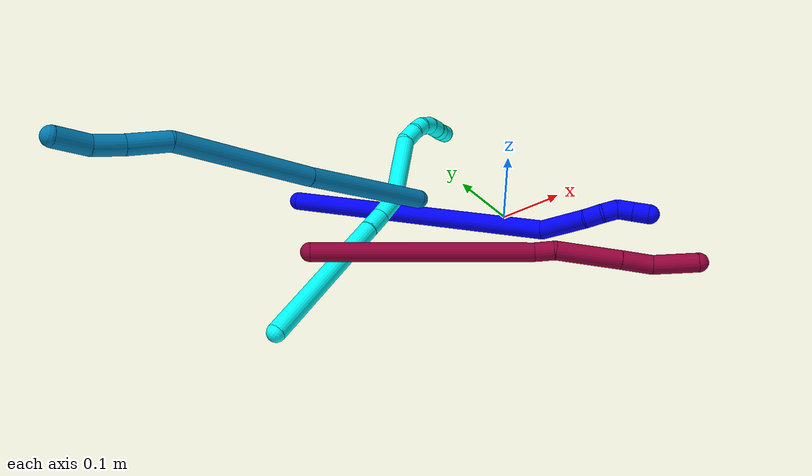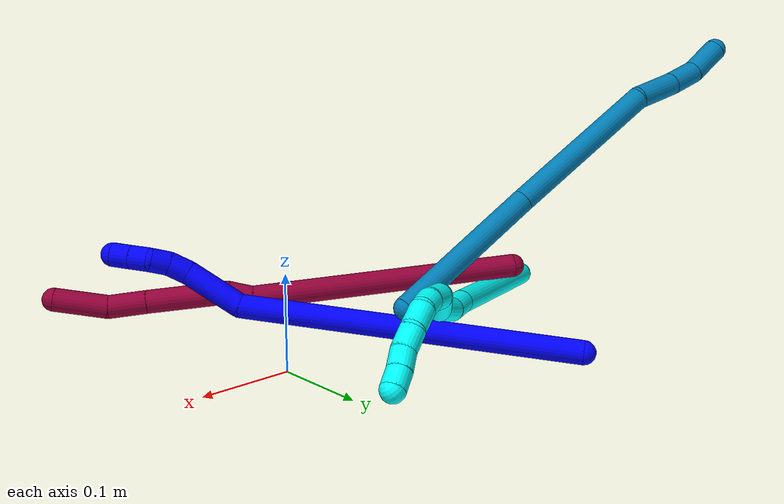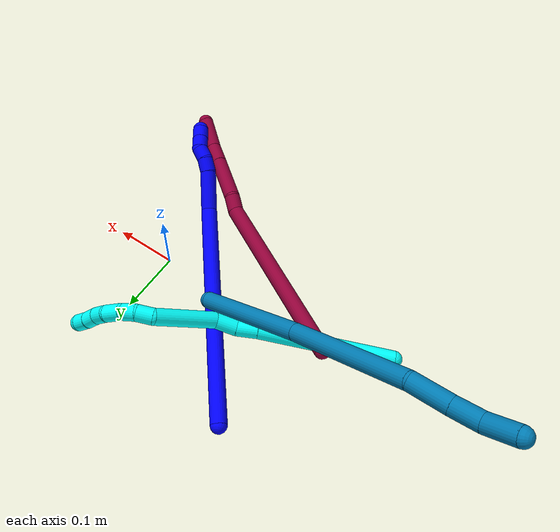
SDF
<sdf version="1.7">
 <world name="default">
  <model name="photoneo_s_sensor">
   <static>1</static>
   <pose>0 0 2 1.57079 1.57079 3.14159</pose>
   <link name="link">
    <inertial><mass>0.1</mass></inertial>
    <sensor name="sensor" type="depth">
     <update_rate>30</update_rate>
     <camera>
      <horizontal_fov>1.22</horizontal_fov>
      <image><width>1920</width><height>1200</height><format>B8G8R8</format></image>
      <clip><near>0.1</near><far>4</far></clip>
      <depth_camera><output>points</output></depth_camera>
     </camera>
     <plugin name="camera_plugin" filename="libgazebo_ros_depth_camera.so">
      <baseline>0.2</baseline>
      <alwaysOn>1</alwaysOn>
      <updateRate>0.0</updateRate>
      <cameraName>camera_ir</cameraName>
      <imageTopicName>/camera/color/image_raw</imageTopicName>
      <cameraInfoTopicName>/camera/color/camera_info</cameraInfoTopicName>
      <depthImageTopicName>/camera/depth/image_raw</depthImageTopicName>
      <depthImageCameraInfoTopicName>/camera/depth/camera_info</depthImageCameraInfoTopicName>
      <pointCloudTopicName>/camera/depth/points</pointCloudTopicName>
      <frameName>fr_optical</frameName>
      <pointCloudCutoff>0.1</pointCloudCutoff>
      <pointCloudCutoffMax>2.0</pointCloudCutoffMax>
      <distortionK1>0</distortionK1>
      <distortionK2>0</distortionK2>
      <distortionK3>0</distortionK3>
      <distortionT1>0</distortionT1>
      <distortionT2>0</distortionT2>
      <CxPrime>0</CxPrime>
      <Cx>0</Cx>
      <Cy>0</Cy>
      <focalLength>0</focalLength>
      <hackBaseline>0</hackBaseline>
     </plugin>
    </sensor>
   </link>
  </model>
  <model name="1">
   <static>0</static>
   <link name="1">
    <collision name="collision-cylinder-e_1_1_4">
     <pose>0.014824 -0.054235 -0.16768 2.82877 0.083921 0.520397</pose>
     <geometry><cylinder><radius>0.0125</radius><length>0.35371</length></cylinder></geometry>
     <surface>
      <friction><ode><mu>1.16</mu><mu2>1.16</mu2><slip1>0</slip1><slip2>0</slip2></ode></friction>
      <contact><ode><kp>1e+06</kp><kd>1</kd><max_vel>0</max_vel><min_depth>0.001</min_depth></ode></contact>
     </surface>
    </collision>
    <visual name="visual-cylinder-e_1_1_4">
     <pose>0.014824 -0.054235 -0.16768 2.82877 0.083921 0.520397</pose>
     <geometry><cylinder><radius>0.0125</radius><length>0.35371</length></cylinder></geometry>
     <material><ambient>0 0 1 1</ambient></material>
    </visual>
    <collision name="collision-cylinder-e_2_4_5">
     <pose>0.024348 -0.128435 -0.359529 2.45118 -0.167512 -0.458699</pose>
     <geometry><cylinder><radius>0.0125</radius><length>0.063588</length></cylinder></geometry>
     <surface>
      <friction><ode><mu>1.16</mu><mu2>1.16</mu2><slip1>0</slip1><slip2>0</slip2></ode></friction>
      <contact><ode><kp>1e+06</kp><kd>1</kd><max_vel>0</max_vel><min_depth>0.001</min_depth></ode></contact>
     </surface>
    </collision>
    <visual name="visual-cylinder-e_2_4_5">
     <pose>0.024348 -0.128435 -0.359529 2.45118 -0.167512 -0.458699</pose>
     <geometry><cylinder><radius>0.0125</radius><length>0.063588</length></cylinder></geometry>
     <material><ambient>0 0 1 1</ambient></material>
    </visual>
    <collision name="collision-cylinder-e_3_5_6">
     <pose>0.019508 -0.1559 -0.391935 2.40295 0.041344 0.106722</pose>
     <geometry><cylinder><radius>0.0125</radius><length>0.022299</length></cylinder></geometry>
     <surface>
      <friction><ode><mu>1.16</mu><mu2>1.16</mu2><slip1>0</slip1><slip2>0</slip2></ode></friction>
      <contact><ode><kp>1e+06</kp><kd>1</kd><max_vel>0</max_vel><min_depth>0.001</min_depth></ode></contact>
     </surface>
    </collision>
    <visual name="visual-cylinder-e_3_5_6">
     <pose>0.019508 -0.1559 -0.391935 2.40295 0.041344 0.106722</pose>
     <geometry><cylinder><radius>0.0125</radius><length>0.022299</length></cylinder></geometry>
     <material><ambient>0 0 1 1</ambient></material>
    </visual>
    <collision name="collision-cylinder-e_4_6_7">
     <pose>0.023092 -0.16948 -0.407487 2.44817 0.317312 0.833768</pose>
     <geometry><cylinder><radius>0.0125</radius><length>0.020023</length></cylinder></geometry>
     <surface>
      <friction><ode><mu>1.16</mu><mu2>1.16</mu2><slip1>0</slip1><slip2>0</slip2></ode></friction>
      <contact><ode><kp>1e+06</kp><kd>1</kd><max_vel>0</max_vel><min_depth>0.001</min_depth></ode></contact>
     </surface>
    </collision>
    <visual name="visual-cylinder-e_4_6_7">
     <pose>0.023092 -0.16948 -0.407487 2.44817 0.317312 0.833768</pose>
     <geometry><cylinder><radius>0.0125</radius><length>0.020023</length></cylinder></geometry>
     <material><ambient>0 0 1 1</ambient></material>
    </visual>
    <collision name="collision-cylinder-e_5_7_8">
     <pose>0.026525 -0.178197 -0.424584 2.87825 0.030437 0.228836</pose>
     <geometry><cylinder><radius>0.0125</radius><length>0.020272</length></cylinder></geometry>
     <surface>
      <friction><ode><mu>1.16</mu><mu2>1.16</mu2><slip1>0</slip1><slip2>0</slip2></ode></friction>
      <contact><ode><kp>1e+06</kp><kd>1</kd><max_vel>0</max_vel><min_depth>0.001</min_depth></ode></contact>
     </surface>
    </collision>
    <visual name="visual-cylinder-e_5_7_8">
     <pose>0.026525 -0.178197 -0.424584 2.87825 0.030437 0.228836</pose>
     <geometry><cylinder><radius>0.0125</radius><length>0.020272</length></cylinder></geometry>
     <material><ambient>0 0 1 1</ambient></material>
    </visual>
    <collision name="collision-cylinder-e_6_8_2">
     <pose>0.027129 -0.18355 -0.444042 2.86794 0.029484 0.21334</pose>
     <geometry><cylinder><radius>0.0125</radius><length>0.020108</length></cylinder></geometry>
     <surface>
      <friction><ode><mu>1.16</mu><mu2>1.16</mu2><slip1>0</slip1><slip2>0</slip2></ode></friction>
      <contact><ode><kp>1e+06</kp><kd>1</kd><max_vel>0</max_vel><min_depth>0.001</min_depth></ode></contact>
     </surface>
    </collision>
    <visual name="visual-cylinder-e_6_8_2">
     <pose>0.027129 -0.18355 -0.444042 2.86794 0.029484 0.21334</pose>
     <geometry><cylinder><radius>0.0125</radius><length>0.020108</length></cylinder></geometry>
     <material><ambient>0 0 1 1</ambient></material>
    </visual>
    <collision name="collision-sphere-2">
     <pose>0.027426 -0.186266 -0.453717 0 -0 0</pose>
     <geometry><sphere><radius>0.0125</radius></sphere></geometry>
     <surface>
      <friction><ode><mu>1.16</mu><mu2>1.16</mu2><slip1>0</slip1><slip2>0</slip2></ode></friction>
      <contact><ode><kp>1e+06</kp><kd>1</kd><max_vel>0</max_vel><min_depth>0.001</min_depth></ode></contact>
     </surface>
    </collision>
    <visual name="visual-sphere-2">
     <pose>0.027426 -0.186266 -0.453717 0 -0 0</pose>
     <geometry><sphere><radius>0.0125</radius></sphere></geometry>
     <material><ambient>0 0 1 1</ambient></material>
    </visual>
    <collision name="collision-sphere-4">
     <pose>0.029649 -0.10847 -0.335359 0 -0 0</pose>
     <geometry><sphere><radius>0.0125</radius></sphere></geometry>
     <surface>
      <friction><ode><mu>1.16</mu><mu2>1.16</mu2><slip1>0</slip1><slip2>0</slip2></ode></friction>
      <contact><ode><kp>1e+06</kp><kd>1</kd><max_vel>0</max_vel><min_depth>0.001</min_depth></ode></contact>
     </surface>
    </collision>
    <visual name="visual-sphere-4">
     <pose>0.029649 -0.10847 -0.335359 0 -0 0</pose>
     <geometry><sphere><radius>0.0125</radius></sphere></geometry>
     <material><ambient>0 0 1 1</ambient></material>
    </visual>
    <collision name="collision-sphere-1">
     <geometry><sphere><radius>0.0125</radius></sphere></geometry>
     <surface>
      <friction><ode><mu>1.16</mu><mu2>1.16</mu2><slip1>0</slip1><slip2>0</slip2></ode></friction>
      <contact><ode><kp>1e+06</kp><kd>1</kd><max_vel>0</max_vel><min_depth>0.001</min_depth></ode></contact>
     </surface>
    </collision>
    <visual name="visual-sphere-1">
     <geometry><sphere><radius>0.0125</radius></sphere></geometry>
     <material><ambient>0 0 1 1</ambient></material>
    </visual>
    <collision name="collision-sphere-8">
     <pose>0.026833 -0.180835 -0.434367 0 -0 0</pose>
     <geometry><sphere><radius>0.0125</radius></sphere></geometry>
     <surface>
      <friction><ode><mu>1.16</mu><mu2>1.16</mu2><slip1>0</slip1><slip2>0</slip2></ode></friction>
      <contact><ode><kp>1e+06</kp><kd>1</kd><max_vel>0</max_vel><min_depth>0.001</min_depth></ode></contact>
     </surface>
    </collision>
    <visual name="visual-sphere-8">
     <pose>0.026833 -0.180835 -0.434367 0 -0 0</pose>
     <geometry><sphere><radius>0.0125</radius></sphere></geometry>
     <material><ambient>0 0 1 1</ambient></material>
    </visual>
    <collision name="collision-sphere-5">
     <pose>0.019047 -0.1484 -0.383699 0 -0 0</pose>
     <geometry><sphere><radius>0.0125</radius></sphere></geometry>
     <surface>
      <friction><ode><mu>1.16</mu><mu2>1.16</mu2><slip1>0</slip1><slip2>0</slip2></ode></friction>
      <contact><ode><kp>1e+06</kp><kd>1</kd><max_vel>0</max_vel><min_depth>0.001</min_depth></ode></contact>
     </surface>
    </collision>
    <visual name="visual-sphere-5">
     <pose>0.019047 -0.1484 -0.383699 0 -0 0</pose>
     <geometry><sphere><radius>0.0125</radius></sphere></geometry>
     <material><ambient>0 0 1 1</ambient></material>
    </visual>
    <collision name="collision-sphere-6">
     <pose>0.019969 -0.1634 -0.400172 0 -0 0</pose>
     <geometry><sphere><radius>0.0125</radius></sphere></geometry>
     <surface>
      <friction><ode><mu>1.16</mu><mu2>1.16</mu2><slip1>0</slip1><slip2>0</slip2></ode></friction>
      <contact><ode><kp>1e+06</kp><kd>1</kd><max_vel>0</max_vel><min_depth>0.001</min_depth></ode></contact>
     </surface>
    </collision>
    <visual name="visual-sphere-6">
     <pose>0.019969 -0.1634 -0.400172 0 -0 0</pose>
     <geometry><sphere><radius>0.0125</radius></sphere></geometry>
     <material><ambient>0 0 1 1</ambient></material>
    </visual>
    <collision name="collision-sphere-7">
     <pose>0.026216 -0.17556 -0.414802 0 -0 0</pose>
     <geometry><sphere><radius>0.0125</radius></sphere></geometry>
     <surface>
      <friction><ode><mu>1.16</mu><mu2>1.16</mu2><slip1>0</slip1><slip2>0</slip2></ode></friction>
      <contact><ode><kp>1e+06</kp><kd>1</kd><max_vel>0</max_vel><min_depth>0.001</min_depth></ode></contact>
     </surface>
    </collision>
    <visual name="visual-sphere-7">
     <pose>0.026216 -0.17556 -0.414802 0 -0 0</pose>
     <geometry><sphere><radius>0.0125</radius></sphere></geometry>
     <material><ambient>0 0 1 1</ambient></material>
    </visual>
    <inertial>
     <pose>0.017545 -0.083047 -0.233213 0 -0 0</pose>
     <mass>0.5</mass>
     <inertia>
      <ixx>0.005055</ixx>
      <ixy>0</ixy>
      <ixz>0</ixz>
      <iyy>-0.001217</iyy>
      <iyz>0</iyz>
      <izz>0.000811</izz>
     </inertia>
    </inertial>
   </link>
   <pose>-0.233049 0.180496 0.011496 -1.40434 0.505091 0.532991</pose>
  </model>
  <model name="3">
   <static>0</static>
   <link name="3">
    <collision name="collision-cylinder-e_1_1_4">
     <pose>0.00408 0.090204 -0.047245 -2.05327 0.04005 -0.066172</pose>
     <geometry><cylinder><radius>0.0125</radius><length>0.203819</length></cylinder></geometry>
     <surface>
      <friction><ode><mu>1.16</mu><mu2>1.16</mu2><slip1>0</slip1><slip2>0</slip2></ode></friction>
      <contact><ode><kp>1e+06</kp><kd>1</kd><max_vel>0</max_vel><min_depth>0.001</min_depth></ode></contact>
     </surface>
    </collision>
    <visual name="visual-cylinder-e_1_1_4">
     <pose>0.00408 0.090204 -0.047245 -2.05327 0.04005 -0.066172</pose>
     <geometry><cylinder><radius>0.0125</radius><length>0.203819</length></cylinder></geometry>
     <material><ambient>0.003922 1 0.996078 1</ambient></material>
    </visual>
    <collision name="collision-cylinder-e_2_4_5">
     <pose>0.008911 0.195031 -0.100556 -1.96407 0.047352 -0.070895</pose>
     <geometry><cylinder><radius>0.0125</radius><length>0.031698</length></cylinder></geometry>
     <surface>
      <friction><ode><mu>1.16</mu><mu2>1.16</mu2><slip1>0</slip1><slip2>0</slip2></ode></friction>
      <contact><ode><kp>1e+06</kp><kd>1</kd><max_vel>0</max_vel><min_depth>0.001</min_depth></ode></contact>
     </surface>
    </collision>
    <visual name="visual-cylinder-e_2_4_5">
     <pose>0.008911 0.195031 -0.100556 -1.96407 0.047352 -0.070895</pose>
     <geometry><cylinder><radius>0.0125</radius><length>0.031698</length></cylinder></geometry>
     <material><ambient>0.003922 1 0.996078 1</ambient></material>
    </visual>
    <collision name="collision-cylinder-e_3_5_6">
     <pose>0.01068 0.222572 -0.116667 -2.23167 0.062196 -0.127011</pose>
     <geometry><cylinder><radius>0.0125</radius><length>0.032791</length></cylinder></geometry>
     <surface>
      <friction><ode><mu>1.16</mu><mu2>1.16</mu2><slip1>0</slip1><slip2>0</slip2></ode></friction>
      <contact><ode><kp>1e+06</kp><kd>1</kd><max_vel>0</max_vel><min_depth>0.001</min_depth></ode></contact>
     </surface>
    </collision>
    <visual name="visual-cylinder-e_3_5_6">
     <pose>0.01068 0.222572 -0.116667 -2.23167 0.062196 -0.127011</pose>
     <geometry><cylinder><radius>0.0125</radius><length>0.032791</length></cylinder></geometry>
     <material><ambient>0.003922 1 0.996078 1</ambient></material>
    </visual>
    <collision name="collision-cylinder-e_4_6_7">
     <pose>0.034624 0.269358 -0.15152 -2.20301 0.499811 -0.932666</pose>
     <geometry><cylinder><radius>0.0125</radius><length>0.095667</length></cylinder></geometry>
     <surface>
      <friction><ode><mu>1.16</mu><mu2>1.16</mu2><slip1>0</slip1><slip2>0</slip2></ode></friction>
      <contact><ode><kp>1e+06</kp><kd>1</kd><max_vel>0</max_vel><min_depth>0.001</min_depth></ode></contact>
     </surface>
    </collision>
    <visual name="visual-cylinder-e_4_6_7">
     <pose>0.034624 0.269358 -0.15152 -2.20301 0.499811 -0.932666</pose>
     <geometry><cylinder><radius>0.0125</radius><length>0.095667</length></cylinder></geometry>
     <material><ambient>0.003922 1 0.996078 1</ambient></material>
    </visual>
    <collision name="collision-cylinder-e_5_7_8">
     <pose>0.058036 0.314119 -0.18237 -2.07717 0.039111 -0.066399</pose>
     <geometry><cylinder><radius>0.0125</radius><length>0.024933</length></cylinder></geometry>
     <surface>
      <friction><ode><mu>1.16</mu><mu2>1.16</mu2><slip1>0</slip1><slip2>0</slip2></ode></friction>
      <contact><ode><kp>1e+06</kp><kd>1</kd><max_vel>0</max_vel><min_depth>0.001</min_depth></ode></contact>
     </surface>
    </collision>
    <visual name="visual-cylinder-e_5_7_8">
     <pose>0.058036 0.314119 -0.18237 -2.07717 0.039111 -0.066399</pose>
     <geometry><cylinder><radius>0.0125</radius><length>0.024933</length></cylinder></geometry>
     <material><ambient>0.003922 1 0.996078 1</ambient></material>
    </visual>
    <collision name="collision-cylinder-e_6_8_9">
     <pose>0.05819 0.335218 -0.191079 -1.82644 -0.031605 0.040925</pose>
     <geometry><cylinder><radius>0.0125</radius><length>0.021106</length></cylinder></geometry>
     <surface>
      <friction><ode><mu>1.16</mu><mu2>1.16</mu2><slip1>0</slip1><slip2>0</slip2></ode></friction>
      <contact><ode><kp>1e+06</kp><kd>1</kd><max_vel>0</max_vel><min_depth>0.001</min_depth></ode></contact>
     </surface>
    </collision>
    <visual name="visual-cylinder-e_6_8_9">
     <pose>0.05819 0.335218 -0.191079 -1.82644 -0.031605 0.040925</pose>
     <geometry><cylinder><radius>0.0125</radius><length>0.021106</length></cylinder></geometry>
     <material><ambient>0.003922 1 0.996078 1</ambient></material>
    </visual>
    <collision name="collision-cylinder-e_7_9_10">
     <pose>0.055041 0.35841 -0.193282 -1.53502 -0.213325 0.205881</pose>
     <geometry><cylinder><radius>0.0125</radius><length>0.026594</length></cylinder></geometry>
     <surface>
      <friction><ode><mu>1.16</mu><mu2>1.16</mu2><slip1>0</slip1><slip2>0</slip2></ode></friction>
      <contact><ode><kp>1e+06</kp><kd>1</kd><max_vel>0</max_vel><min_depth>0.001</min_depth></ode></contact>
     </surface>
    </collision>
    <visual name="visual-cylinder-e_7_9_10">
     <pose>0.055041 0.35841 -0.193282 -1.53502 -0.213325 0.205881</pose>
     <geometry><cylinder><radius>0.0125</radius><length>0.026594</length></cylinder></geometry>
     <material><ambient>0.003922 1 0.996078 1</ambient></material>
    </visual>
    <collision name="collision-cylinder-e_8_10_11">
     <pose>0.047536 0.381581 -0.190262 -1.32496 -0.420095 0.329601</pose>
     <geometry><cylinder><radius>0.0125</radius><length>0.022998</length></cylinder></geometry>
     <surface>
      <friction><ode><mu>1.16</mu><mu2>1.16</mu2><slip1>0</slip1><slip2>0</slip2></ode></friction>
      <contact><ode><kp>1e+06</kp><kd>1</kd><max_vel>0</max_vel><min_depth>0.001</min_depth></ode></contact>
     </surface>
    </collision>
    <visual name="visual-cylinder-e_8_10_11">
     <pose>0.047536 0.381581 -0.190262 -1.32496 -0.420095 0.329601</pose>
     <geometry><cylinder><radius>0.0125</radius><length>0.022998</length></cylinder></geometry>
     <material><ambient>0.003922 1 0.996078 1</ambient></material>
    </visual>
    <collision name="collision-cylinder-e_9_11_12">
     <pose>0.040716 0.401118 -0.184562 -1.24642 -0.212684 0.15315</pose>
     <geometry><cylinder><radius>0.0125</radius><length>0.02019</length></cylinder></geometry>
     <surface>
      <friction><ode><mu>1.16</mu><mu2>1.16</mu2><slip1>0</slip1><slip2>0</slip2></ode></friction>
      <contact><ode><kp>1e+06</kp><kd>1</kd><max_vel>0</max_vel><min_depth>0.001</min_depth></ode></contact>
     </surface>
    </collision>
    <visual name="visual-cylinder-e_9_11_12">
     <pose>0.040716 0.401118 -0.184562 -1.24642 -0.212684 0.15315</pose>
     <geometry><cylinder><radius>0.0125</radius><length>0.02019</length></cylinder></geometry>
     <material><ambient>0.003922 1 0.996078 1</ambient></material>
    </visual>
    <collision name="collision-cylinder-e_10_12_2">
     <pose>0.035695 0.4199 -0.179226 -1.34248 -0.290141 0.23105</pose>
     <geometry><cylinder><radius>0.0125</radius><length>0.020205</length></cylinder></geometry>
     <surface>
      <friction><ode><mu>1.16</mu><mu2>1.16</mu2><slip1>0</slip1><slip2>0</slip2></ode></friction>
      <contact><ode><kp>1e+06</kp><kd>1</kd><max_vel>0</max_vel><min_depth>0.001</min_depth></ode></contact>
     </surface>
    </collision>
    <visual name="visual-cylinder-e_10_12_2">
     <pose>0.035695 0.4199 -0.179226 -1.34248 -0.290141 0.23105</pose>
     <geometry><cylinder><radius>0.0125</radius><length>0.020205</length></cylinder></geometry>
     <material><ambient>0.003922 1 0.996078 1</ambient></material>
    </visual>
    <collision name="collision-sphere-2">
     <pose>0.032804 0.429329 -0.177035 0 -0 0</pose>
     <geometry><sphere><radius>0.0125</radius></sphere></geometry>
     <surface>
      <friction><ode><mu>1.16</mu><mu2>1.16</mu2><slip1>0</slip1><slip2>0</slip2></ode></friction>
      <contact><ode><kp>1e+06</kp><kd>1</kd><max_vel>0</max_vel><min_depth>0.001</min_depth></ode></contact>
     </surface>
    </collision>
    <visual name="visual-sphere-2">
     <pose>0.032804 0.429329 -0.177035 0 -0 0</pose>
     <geometry><sphere><radius>0.0125</radius></sphere></geometry>
     <material><ambient>0.003922 1 0.996078 1</ambient></material>
    </visual>
    <collision name="collision-sphere-12">
     <pose>0.038585 0.410471 -0.181417 0 -0 0</pose>
     <geometry><sphere><radius>0.0125</radius></sphere></geometry>
     <surface>
      <friction><ode><mu>1.16</mu><mu2>1.16</mu2><slip1>0</slip1><slip2>0</slip2></ode></friction>
      <contact><ode><kp>1e+06</kp><kd>1</kd><max_vel>0</max_vel><min_depth>0.001</min_depth></ode></contact>
     </surface>
    </collision>
    <visual name="visual-sphere-12">
     <pose>0.038585 0.410471 -0.181417 0 -0 0</pose>
     <geometry><sphere><radius>0.0125</radius></sphere></geometry>
     <material><ambient>0.003922 1 0.996078 1</ambient></material>
    </visual>
    <collision name="collision-sphere-11">
     <pose>0.042847 0.391765 -0.187707 0 -0 0</pose>
     <geometry><sphere><radius>0.0125</radius></sphere></geometry>
     <surface>
      <friction><ode><mu>1.16</mu><mu2>1.16</mu2><slip1>0</slip1><slip2>0</slip2></ode></friction>
      <contact><ode><kp>1e+06</kp><kd>1</kd><max_vel>0</max_vel><min_depth>0.001</min_depth></ode></contact>
     </surface>
    </collision>
    <visual name="visual-sphere-11">
     <pose>0.042847 0.391765 -0.187707 0 -0 0</pose>
     <geometry><sphere><radius>0.0125</radius></sphere></geometry>
     <material><ambient>0.003922 1 0.996078 1</ambient></material>
    </visual>
    <collision name="collision-sphere-10">
     <pose>0.052226 0.371398 -0.192817 0 -0 0</pose>
     <geometry><sphere><radius>0.0125</radius></sphere></geometry>
     <surface>
      <friction><ode><mu>1.16</mu><mu2>1.16</mu2><slip1>0</slip1><slip2>0</slip2></ode></friction>
      <contact><ode><kp>1e+06</kp><kd>1</kd><max_vel>0</max_vel><min_depth>0.001</min_depth></ode></contact>
     </surface>
    </collision>
    <visual name="visual-sphere-10">
     <pose>0.052226 0.371398 -0.192817 0 -0 0</pose>
     <geometry><sphere><radius>0.0125</radius></sphere></geometry>
     <material><ambient>0.003922 1 0.996078 1</ambient></material>
    </visual>
    <collision name="collision-sphere-9">
     <pose>0.057857 0.345423 -0.193746 0 -0 0</pose>
     <geometry><sphere><radius>0.0125</radius></sphere></geometry>
     <surface>
      <friction><ode><mu>1.16</mu><mu2>1.16</mu2><slip1>0</slip1><slip2>0</slip2></ode></friction>
      <contact><ode><kp>1e+06</kp><kd>1</kd><max_vel>0</max_vel><min_depth>0.001</min_depth></ode></contact>
     </surface>
    </collision>
    <visual name="visual-sphere-9">
     <pose>0.057857 0.345423 -0.193746 0 -0 0</pose>
     <geometry><sphere><radius>0.0125</radius></sphere></geometry>
     <material><ambient>0.003922 1 0.996078 1</ambient></material>
    </visual>
    <collision name="collision-sphere-4">
     <pose>0.008161 0.180408 -0.09449 0 -0 0</pose>
     <geometry><sphere><radius>0.0125</radius></sphere></geometry>
     <surface>
      <friction><ode><mu>1.16</mu><mu2>1.16</mu2><slip1>0</slip1><slip2>0</slip2></ode></friction>
      <contact><ode><kp>1e+06</kp><kd>1</kd><max_vel>0</max_vel><min_depth>0.001</min_depth></ode></contact>
     </surface>
    </collision>
    <visual name="visual-sphere-4">
     <pose>0.008161 0.180408 -0.09449 0 -0 0</pose>
     <geometry><sphere><radius>0.0125</radius></sphere></geometry>
     <material><ambient>0.003922 1 0.996078 1</ambient></material>
    </visual>
    <collision name="collision-sphere-1">
     <geometry><sphere><radius>0.0125</radius></sphere></geometry>
     <surface>
      <friction><ode><mu>1.16</mu><mu2>1.16</mu2><slip1>0</slip1><slip2>0</slip2></ode></friction>
      <contact><ode><kp>1e+06</kp><kd>1</kd><max_vel>0</max_vel><min_depth>0.001</min_depth></ode></contact>
     </surface>
    </collision>
    <visual name="visual-sphere-1">
     <geometry><sphere><radius>0.0125</radius></sphere></geometry>
     <material><ambient>0.003922 1 0.996078 1</ambient></material>
    </visual>
    <collision name="collision-sphere-8">
     <pose>0.058523 0.325013 -0.188412 0 -0 0</pose>
     <geometry><sphere><radius>0.0125</radius></sphere></geometry>
     <surface>
      <friction><ode><mu>1.16</mu><mu2>1.16</mu2><slip1>0</slip1><slip2>0</slip2></ode></friction>
      <contact><ode><kp>1e+06</kp><kd>1</kd><max_vel>0</max_vel><min_depth>0.001</min_depth></ode></contact>
     </surface>
    </collision>
    <visual name="visual-sphere-8">
     <pose>0.058523 0.325013 -0.188412 0 -0 0</pose>
     <geometry><sphere><radius>0.0125</radius></sphere></geometry>
     <material><ambient>0.003922 1 0.996078 1</ambient></material>
    </visual>
    <collision name="collision-sphere-5">
     <pose>0.009661 0.209653 -0.106623 0 -0 0</pose>
     <geometry><sphere><radius>0.0125</radius></sphere></geometry>
     <surface>
      <friction><ode><mu>1.16</mu><mu2>1.16</mu2><slip1>0</slip1><slip2>0</slip2></ode></friction>
      <contact><ode><kp>1e+06</kp><kd>1</kd><max_vel>0</max_vel><min_depth>0.001</min_depth></ode></contact>
     </surface>
    </collision>
    <visual name="visual-sphere-5">
     <pose>0.009661 0.209653 -0.106623 0 -0 0</pose>
     <geometry><sphere><radius>0.0125</radius></sphere></geometry>
     <material><ambient>0.003922 1 0.996078 1</ambient></material>
    </visual>
    <collision name="collision-sphere-6">
     <pose>0.011699 0.23549 -0.126711 0 -0 0</pose>
     <geometry><sphere><radius>0.0125</radius></sphere></geometry>
     <surface>
      <friction><ode><mu>1.16</mu><mu2>1.16</mu2><slip1>0</slip1><slip2>0</slip2></ode></friction>
      <contact><ode><kp>1e+06</kp><kd>1</kd><max_vel>0</max_vel><min_depth>0.001</min_depth></ode></contact>
     </surface>
    </collision>
    <visual name="visual-sphere-6">
     <pose>0.011699 0.23549 -0.126711 0 -0 0</pose>
     <geometry><sphere><radius>0.0125</radius></sphere></geometry>
     <material><ambient>0.003922 1 0.996078 1</ambient></material>
    </visual>
    <collision name="collision-sphere-7">
     <pose>0.057549 0.303226 -0.176329 0 -0 0</pose>
     <geometry><sphere><radius>0.0125</radius></sphere></geometry>
     <surface>
      <friction><ode><mu>1.16</mu><mu2>1.16</mu2><slip1>0</slip1><slip2>0</slip2></ode></friction>
      <contact><ode><kp>1e+06</kp><kd>1</kd><max_vel>0</max_vel><min_depth>0.001</min_depth></ode></contact>
     </surface>
    </collision>
    <visual name="visual-sphere-7">
     <pose>0.057549 0.303226 -0.176329 0 -0 0</pose>
     <geometry><sphere><radius>0.0125</radius></sphere></geometry>
     <material><ambient>0.003922 1 0.996078 1</ambient></material>
    </visual>
    <inertial>
     <pose>0.023104 0.214862 -0.113162 0 -0 0</pose>
     <mass>0.5</mass>
     <inertia>
      <ixx>0.000672</ixx>
      <ixy>0</ixy>
      <ixz>0</ixz>
      <iyy>-0.000402</iyy>
      <iyz>0</iyz>
      <izz>-0.000781</izz>
     </inertia>
    </inertial>
   </link>
   <pose>-0.384216 -0.047072 0.011496 -2.78153 -0.50015 2.03245</pose>
  </model>
  <model name="8">
   <static>0</static>
   <link name="8">
    <collision name="collision-cylinder-e_1_1_4">
     <pose>0.122799 -0.076362 0.006317 1.48826 1.01294 0.944404</pose>
     <geometry><cylinder><radius>0.0125</radius><length>0.289486</length></cylinder></geometry>
     <surface>
      <friction><ode><mu>1.16</mu><mu2>1.16</mu2><slip1>0</slip1><slip2>0</slip2></ode></friction>
      <contact><ode><kp>1e+06</kp><kd>1</kd><max_vel>0</max_vel><min_depth>0.001</min_depth></ode></contact>
     </surface>
    </collision>
    <visual name="visual-cylinder-e_1_1_4">
     <pose>0.122799 -0.076362 0.006317 1.48826 1.01294 0.944404</pose>
     <geometry><cylinder><radius>0.0125</radius><length>0.289486</length></cylinder></geometry>
     <material><ambient>0.584314 0 0.227451 1</ambient></material>
    </visual>
    <collision name="collision-cylinder-e_2_4_5">
     <pose>0.254338 -0.162332 0.016087 1.22575 0.707988 0.50851</pose>
     <geometry><cylinder><radius>0.0125</radius><length>0.026882</length></cylinder></geometry>
     <surface>
      <friction><ode><mu>1.16</mu><mu2>1.16</mu2><slip1>0</slip1><slip2>0</slip2></ode></friction>
      <contact><ode><kp>1e+06</kp><kd>1</kd><max_vel>0</max_vel><min_depth>0.001</min_depth></ode></contact>
     </surface>
    </collision>
    <visual name="visual-cylinder-e_2_4_5">
     <pose>0.254338 -0.162332 0.016087 1.22575 0.707988 0.50851</pose>
     <geometry><cylinder><radius>0.0125</radius><length>0.026882</length></cylinder></geometry>
     <material><ambient>0.584314 0 0.227451 1</ambient></material>
    </visual>
    <collision name="collision-cylinder-e_3_5_6">
     <pose>0.29524 -0.199643 0.017687 1.6376 0.858647 0.910351</pose>
     <geometry><cylinder><radius>0.0125</radius><length>0.084973</length></cylinder></geometry>
     <surface>
      <friction><ode><mu>1.16</mu><mu2>1.16</mu2><slip1>0</slip1><slip2>0</slip2></ode></friction>
      <contact><ode><kp>1e+06</kp><kd>1</kd><max_vel>0</max_vel><min_depth>0.001</min_depth></ode></contact>
     </surface>
    </collision>
    <visual name="visual-cylinder-e_3_5_6">
     <pose>0.29524 -0.199643 0.017687 1.6376 0.858647 0.910351</pose>
     <geometry><cylinder><radius>0.0125</radius><length>0.084973</length></cylinder></geometry>
     <material><ambient>0.584314 0 0.227451 1</ambient></material>
    </visual>
    <collision name="collision-cylinder-e_4_6_7">
     <pose>0.342938 -0.240514 0.014619 1.66284 0.865588 0.937849</pose>
     <geometry><cylinder><radius>0.0125</radius><length>0.040809</length></cylinder></geometry>
     <surface>
      <friction><ode><mu>1.16</mu><mu2>1.16</mu2><slip1>0</slip1><slip2>0</slip2></ode></friction>
      <contact><ode><kp>1e+06</kp><kd>1</kd><max_vel>0</max_vel><min_depth>0.001</min_depth></ode></contact>
     </surface>
    </collision>
    <visual name="visual-cylinder-e_4_6_7">
     <pose>0.342938 -0.240514 0.014619 1.66284 0.865588 0.937849</pose>
     <geometry><cylinder><radius>0.0125</radius><length>0.040809</length></cylinder></geometry>
     <material><ambient>0.584314 0 0.227451 1</ambient></material>
    </visual>
    <collision name="collision-cylinder-e_5_7_2">
     <pose>0.378474 -0.273716 0.019357 1.28186 0.763414 0.58188</pose>
     <geometry><cylinder><radius>0.0125</radius><length>0.05785</length></cylinder></geometry>
     <surface>
      <friction><ode><mu>1.16</mu><mu2>1.16</mu2><slip1>0</slip1><slip2>0</slip2></ode></friction>
      <contact><ode><kp>1e+06</kp><kd>1</kd><max_vel>0</max_vel><min_depth>0.001</min_depth></ode></contact>
     </surface>
    </collision>
    <visual name="visual-cylinder-e_5_7_2">
     <pose>0.378474 -0.273716 0.019357 1.28186 0.763414 0.58188</pose>
     <geometry><cylinder><radius>0.0125</radius><length>0.05785</length></cylinder></geometry>
     <material><ambient>0.584314 0 0.227451 1</ambient></material>
    </visual>
    <collision name="collision-sphere-2">
     <pose>0.398472 -0.293747 0.025312 0 -0 0</pose>
     <geometry><sphere><radius>0.0125</radius></sphere></geometry>
     <surface>
      <friction><ode><mu>1.16</mu><mu2>1.16</mu2><slip1>0</slip1><slip2>0</slip2></ode></friction>
      <contact><ode><kp>1e+06</kp><kd>1</kd><max_vel>0</max_vel><min_depth>0.001</min_depth></ode></contact>
     </surface>
    </collision>
    <visual name="visual-sphere-2">
     <pose>0.398472 -0.293747 0.025312 0 -0 0</pose>
     <geometry><sphere><radius>0.0125</radius></sphere></geometry>
     <material><ambient>0.584314 0 0.227451 1</ambient></material>
    </visual>
    <collision name="collision-sphere-7">
     <pose>0.358475 -0.253685 0.013403 0 -0 0</pose>
     <geometry><sphere><radius>0.0125</radius></sphere></geometry>
     <surface>
      <friction><ode><mu>1.16</mu><mu2>1.16</mu2><slip1>0</slip1><slip2>0</slip2></ode></friction>
      <contact><ode><kp>1e+06</kp><kd>1</kd><max_vel>0</max_vel><min_depth>0.001</min_depth></ode></contact>
     </surface>
    </collision>
    <visual name="visual-sphere-7">
     <pose>0.358475 -0.253685 0.013403 0 -0 0</pose>
     <geometry><sphere><radius>0.0125</radius></sphere></geometry>
     <material><ambient>0.584314 0 0.227451 1</ambient></material>
    </visual>
    <collision name="collision-sphere-6">
     <pose>0.3274 -0.227344 0.015834 0 -0 0</pose>
     <geometry><sphere><radius>0.0125</radius></sphere></geometry>
     <surface>
      <friction><ode><mu>1.16</mu><mu2>1.16</mu2><slip1>0</slip1><slip2>0</slip2></ode></friction>
      <contact><ode><kp>1e+06</kp><kd>1</kd><max_vel>0</max_vel><min_depth>0.001</min_depth></ode></contact>
     </surface>
    </collision>
    <visual name="visual-sphere-6">
     <pose>0.3274 -0.227344 0.015834 0 -0 0</pose>
     <geometry><sphere><radius>0.0125</radius></sphere></geometry>
     <material><ambient>0.584314 0 0.227451 1</ambient></material>
    </visual>
    <collision name="collision-sphere-5">
     <pose>0.263079 -0.171941 0.019541 0 -0 0</pose>
     <geometry><sphere><radius>0.0125</radius></sphere></geometry>
     <surface>
      <friction><ode><mu>1.16</mu><mu2>1.16</mu2><slip1>0</slip1><slip2>0</slip2></ode></friction>
      <contact><ode><kp>1e+06</kp><kd>1</kd><max_vel>0</max_vel><min_depth>0.001</min_depth></ode></contact>
     </surface>
    </collision>
    <visual name="visual-sphere-5">
     <pose>0.263079 -0.171941 0.019541 0 -0 0</pose>
     <geometry><sphere><radius>0.0125</radius></sphere></geometry>
     <material><ambient>0.584314 0 0.227451 1</ambient></material>
    </visual>
    <collision name="collision-sphere-1">
     <geometry><sphere><radius>0.0125</radius></sphere></geometry>
     <surface>
      <friction><ode><mu>1.16</mu><mu2>1.16</mu2><slip1>0</slip1><slip2>0</slip2></ode></friction>
      <contact><ode><kp>1e+06</kp><kd>1</kd><max_vel>0</max_vel><min_depth>0.001</min_depth></ode></contact>
     </surface>
    </collision>
    <visual name="visual-sphere-1">
     <geometry><sphere><radius>0.0125</radius></sphere></geometry>
     <material><ambient>0.584314 0 0.227451 1</ambient></material>
    </visual>
    <collision name="collision-sphere-4">
     <pose>0.245598 -0.152724 0.012634 0 -0 0</pose>
     <geometry><sphere><radius>0.0125</radius></sphere></geometry>
     <surface>
      <friction><ode><mu>1.16</mu><mu2>1.16</mu2><slip1>0</slip1><slip2>0</slip2></ode></friction>
      <contact><ode><kp>1e+06</kp><kd>1</kd><max_vel>0</max_vel><min_depth>0.001</min_depth></ode></contact>
     </surface>
    </collision>
    <visual name="visual-sphere-4">
     <pose>0.245598 -0.152724 0.012634 0 -0 0</pose>
     <geometry><sphere><radius>0.0125</radius></sphere></geometry>
     <material><ambient>0.584314 0 0.227451 1</ambient></material>
    </visual>
    <inertial>
     <pose>0.206725 -0.138167 0.010961 0 -0 0</pose>
     <mass>0.5</mass>
     <inertia>
      <ixx>0.001612</ixx>
      <ixy>0</ixy>
      <ixz>0</ixz>
      <iyy>0.002427</iyy>
      <iyz>0</iyz>
      <izz>-0.000657</izz>
     </inertia>
    </inertial>
   </link>
   <pose>-0.299083 0.020102 0.053417 -0.148887 0.207802 0.034328</pose>
  </model>
  <model name="9">
   <static>0</static>
   <link name="9">
    <collision name="collision-cylinder-e_1_1_4">
     <pose>-0.012384 -0.006819 0.088821 0.076622 -0.138136 -0.005303</pose>
     <geometry><cylinder><radius>0.0125</radius><length>0.179879</length></cylinder></geometry>
     <surface>
      <friction><ode><mu>1.16</mu><mu2>1.16</mu2><slip1>0</slip1><slip2>0</slip2></ode></friction>
      <contact><ode><kp>1e+06</kp><kd>1</kd><max_vel>0</max_vel><min_depth>0.001</min_depth></ode></contact>
     </surface>
    </collision>
    <visual name="visual-cylinder-e_1_1_4">
     <pose>-0.012384 -0.006819 0.088821 0.076622 -0.138136 -0.005303</pose>
     <geometry><cylinder><radius>0.0125</radius><length>0.179879</length></cylinder></geometry>
     <material><ambient>0 0.490196 0.709804 1</ambient></material>
    </visual>
    <collision name="collision-cylinder-e_2_4_5">
     <pose>-0.03976 -0.015637 0.270015 0.021633 -0.160852 -0.001744</pose>
     <geometry><cylinder><radius>0.0125</radius><length>0.187205</length></cylinder></geometry>
     <surface>
      <friction><ode><mu>1.16</mu><mu2>1.16</mu2><slip1>0</slip1><slip2>0</slip2></ode></friction>
      <contact><ode><kp>1e+06</kp><kd>1</kd><max_vel>0</max_vel><min_depth>0.001</min_depth></ode></contact>
     </surface>
    </collision>
    <visual name="visual-cylinder-e_2_4_5">
     <pose>-0.03976 -0.015637 0.270015 0.021633 -0.160852 -0.001744</pose>
     <geometry><cylinder><radius>0.0125</radius><length>0.187205</length></cylinder></geometry>
     <material><ambient>0 0.490196 0.709804 1</ambient></material>
    </visual>
    <collision name="collision-cylinder-e_3_5_6">
     <pose>-0.064162 -0.024975 0.385954 0.301906 -0.364252 -0.056013</pose>
     <geometry><cylinder><radius>0.0125</radius><length>0.052833</length></cylinder></geometry>
     <surface>
      <friction><ode><mu>1.16</mu><mu2>1.16</mu2><slip1>0</slip1><slip2>0</slip2></ode></friction>
      <contact><ode><kp>1e+06</kp><kd>1</kd><max_vel>0</max_vel><min_depth>0.001</min_depth></ode></contact>
     </surface>
    </collision>
    <visual name="visual-cylinder-e_3_5_6">
     <pose>-0.064162 -0.024975 0.385954 0.301906 -0.364252 -0.056013</pose>
     <geometry><cylinder><radius>0.0125</radius><length>0.052833</length></cylinder></geometry>
     <material><ambient>0 0.490196 0.709804 1</ambient></material>
    </visual>
    <collision name="collision-cylinder-e_4_6_7">
     <pose>-0.079167 -0.036592 0.426787 0.242873 -0.304683 -0.037469</pose>
     <geometry><cylinder><radius>0.0125</radius><length>0.037293</length></cylinder></geometry>
     <surface>
      <friction><ode><mu>1.16</mu><mu2>1.16</mu2><slip1>0</slip1><slip2>0</slip2></ode></friction>
      <contact><ode><kp>1e+06</kp><kd>1</kd><max_vel>0</max_vel><min_depth>0.001</min_depth></ode></contact>
     </surface>
    </collision>
    <visual name="visual-cylinder-e_4_6_7">
     <pose>-0.079167 -0.036592 0.426787 0.242873 -0.304683 -0.037469</pose>
     <geometry><cylinder><radius>0.0125</radius><length>0.037293</length></cylinder></geometry>
     <material><ambient>0 0.490196 0.709804 1</ambient></material>
    </visual>
    <collision name="collision-cylinder-e_5_7_2">
     <pose>-0.086998 -0.042068 0.465296 0.056379 -0.104761 -0.002957</pose>
     <geometry><cylinder><radius>0.0125</radius><length>0.042791</length></cylinder></geometry>
     <surface>
      <friction><ode><mu>1.16</mu><mu2>1.16</mu2><slip1>0</slip1><slip2>0</slip2></ode></friction>
      <contact><ode><kp>1e+06</kp><kd>1</kd><max_vel>0</max_vel><min_depth>0.001</min_depth></ode></contact>
     </surface>
    </collision>
    <visual name="visual-cylinder-e_5_7_2">
     <pose>-0.086998 -0.042068 0.465296 0.056379 -0.104761 -0.002957</pose>
     <geometry><cylinder><radius>0.0125</radius><length>0.042791</length></cylinder></geometry>
     <material><ambient>0 0.490196 0.709804 1</ambient></material>
    </visual>
    <collision name="collision-sphere-2">
     <pose>-0.089235 -0.043267 0.486541 0 -0 0</pose>
     <geometry><sphere><radius>0.0125</radius></sphere></geometry>
     <surface>
      <friction><ode><mu>1.16</mu><mu2>1.16</mu2><slip1>0</slip1><slip2>0</slip2></ode></friction>
      <contact><ode><kp>1e+06</kp><kd>1</kd><max_vel>0</max_vel><min_depth>0.001</min_depth></ode></contact>
     </surface>
    </collision>
    <visual name="visual-sphere-2">
     <pose>-0.089235 -0.043267 0.486541 0 -0 0</pose>
     <geometry><sphere><radius>0.0125</radius></sphere></geometry>
     <material><ambient>0 0.490196 0.709804 1</ambient></material>
    </visual>
    <collision name="collision-sphere-7">
     <pose>-0.08476 -0.040869 0.444052 0 -0 0</pose>
     <geometry><sphere><radius>0.0125</radius></sphere></geometry>
     <surface>
      <friction><ode><mu>1.16</mu><mu2>1.16</mu2><slip1>0</slip1><slip2>0</slip2></ode></friction>
      <contact><ode><kp>1e+06</kp><kd>1</kd><max_vel>0</max_vel><min_depth>0.001</min_depth></ode></contact>
     </surface>
    </collision>
    <visual name="visual-sphere-7">
     <pose>-0.08476 -0.040869 0.444052 0 -0 0</pose>
     <geometry><sphere><radius>0.0125</radius></sphere></geometry>
     <material><ambient>0 0.490196 0.709804 1</ambient></material>
    </visual>
    <collision name="collision-sphere-6">
     <pose>-0.073573 -0.032314 0.409521 0 -0 0</pose>
     <geometry><sphere><radius>0.0125</radius></sphere></geometry>
     <surface>
      <friction><ode><mu>1.16</mu><mu2>1.16</mu2><slip1>0</slip1><slip2>0</slip2></ode></friction>
      <contact><ode><kp>1e+06</kp><kd>1</kd><max_vel>0</max_vel><min_depth>0.001</min_depth></ode></contact>
     </surface>
    </collision>
    <visual name="visual-sphere-6">
     <pose>-0.073573 -0.032314 0.409521 0 -0 0</pose>
     <geometry><sphere><radius>0.0125</radius></sphere></geometry>
     <material><ambient>0 0.490196 0.709804 1</ambient></material>
    </visual>
    <collision name="collision-sphere-5">
     <pose>-0.054751 -0.017635 0.362387 0 -0 0</pose>
     <geometry><sphere><radius>0.0125</radius></sphere></geometry>
     <surface>
      <friction><ode><mu>1.16</mu><mu2>1.16</mu2><slip1>0</slip1><slip2>0</slip2></ode></friction>
      <contact><ode><kp>1e+06</kp><kd>1</kd><max_vel>0</max_vel><min_depth>0.001</min_depth></ode></contact>
     </surface>
    </collision>
    <visual name="visual-sphere-5">
     <pose>-0.054751 -0.017635 0.362387 0 -0 0</pose>
     <geometry><sphere><radius>0.0125</radius></sphere></geometry>
     <material><ambient>0 0.490196 0.709804 1</ambient></material>
    </visual>
    <collision name="collision-sphere-1">
     <geometry><sphere><radius>0.0125</radius></sphere></geometry>
     <surface>
      <friction><ode><mu>1.16</mu><mu2>1.16</mu2><slip1>0</slip1><slip2>0</slip2></ode></friction>
      <contact><ode><kp>1e+06</kp><kd>1</kd><max_vel>0</max_vel><min_depth>0.001</min_depth></ode></contact>
     </surface>
    </collision>
    <visual name="visual-sphere-1">
     <geometry><sphere><radius>0.0125</radius></sphere></geometry>
     <material><ambient>0 0.490196 0.709804 1</ambient></material>
    </visual>
    <collision name="collision-sphere-4">
     <pose>-0.024769 -0.013638 0.177643 0 -0 0</pose>
     <geometry><sphere><radius>0.0125</radius></sphere></geometry>
     <surface>
      <friction><ode><mu>1.16</mu><mu2>1.16</mu2><slip1>0</slip1><slip2>0</slip2></ode></friction>
      <contact><ode><kp>1e+06</kp><kd>1</kd><max_vel>0</max_vel><min_depth>0.001</min_depth></ode></contact>
     </surface>
    </collision>
    <visual name="visual-sphere-4">
     <pose>-0.024769 -0.013638 0.177643 0 -0 0</pose>
     <geometry><sphere><radius>0.0125</radius></sphere></geometry>
     <material><ambient>0 0.490196 0.709804 1</ambient></material>
    </visual>
    <inertial>
     <pose>-0.039472 -0.017276 0.245485 0 -0 0</pose>
     <mass>0.5</mass>
     <inertia>
      <ixx>0.00105</ixx>
      <ixy>0</ixy>
      <ixz>0</ixz>
      <iyy>0.001064</iyy>
      <iyz>0</iyz>
      <izz>0.000257</izz>
     </inertia>
    </inertial>
   </link>
   <pose>-0.116737 0.044361 0.050559 0.745772 -0.581048 -1.05919</pose>
  </model>
 </world>
</sdf>
